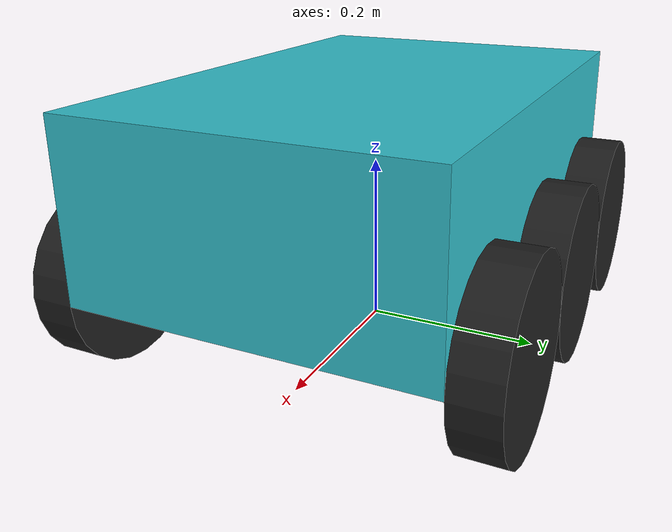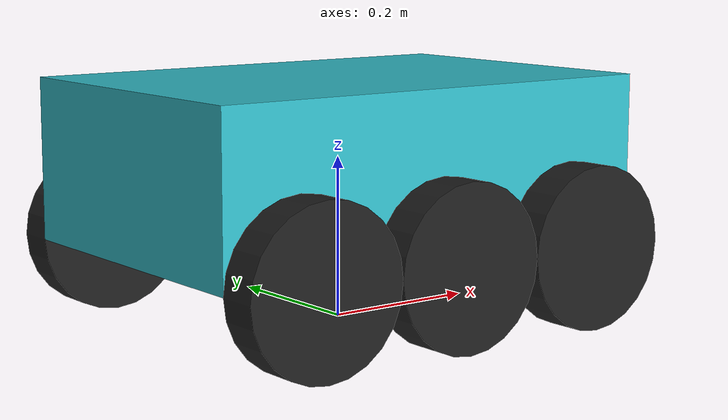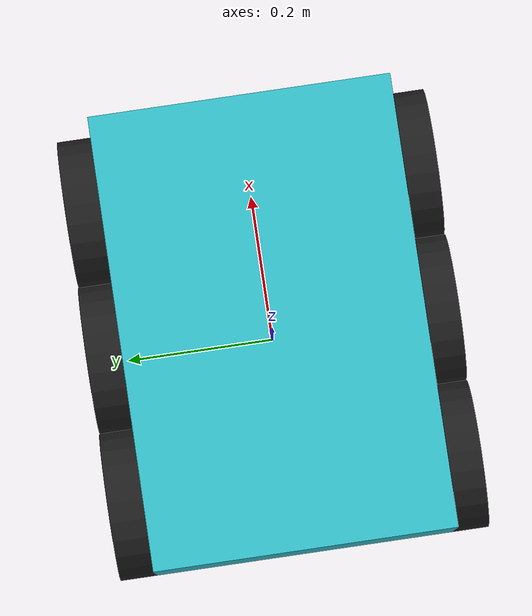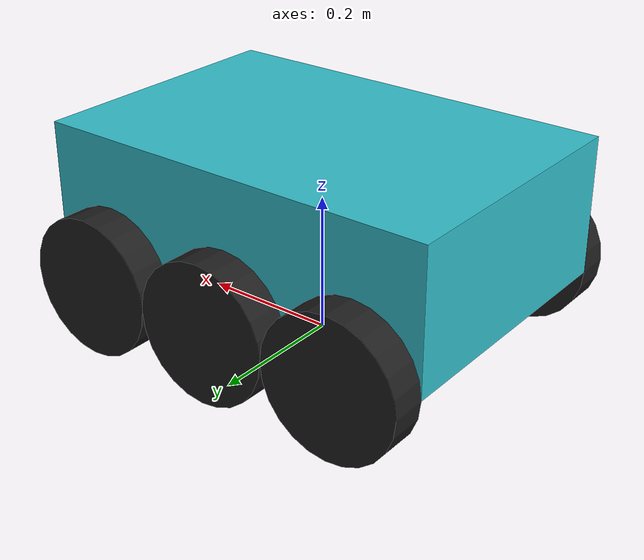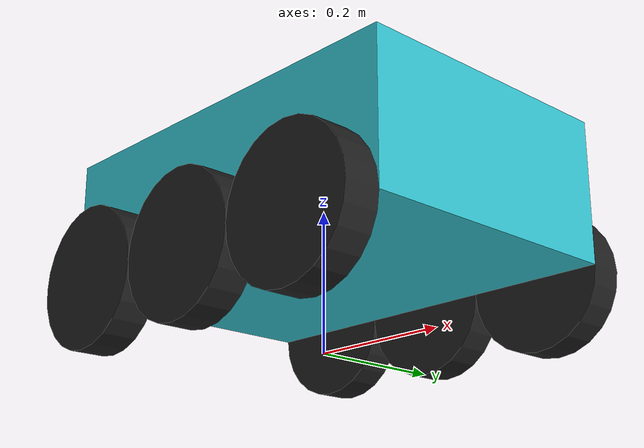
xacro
<?xml version = "1.0"?>
<robot name = "my_robot" xmlns:xacro="http://www.ros.org/wiki/xacro">

    <xacro:property name = "base_width" value = "0.6" />
    <xacro:property name = "base_length" value = "0.4" />
    <xacro:property name = "base_height" value = "0.2" />

    <xacro:property name = "wheel_radius" value = "0.1" />
    <xacro:property name = "wheel_length" value = "0.05" />

    <xacro:macro name = "wheel_link" params = "prefix">
        <link name = "${prefix}_wheel_link">
            <visual>
                <geometry>
                    <cylinder radius = "${wheel_radius}" length = "${wheel_length}" />
                </geometry>
                <origin xyz = "0 0 0" rpy = "${pi/2} 0 0" />
                <material name = "black" />
            </visual>

            <collision>
                <geometry>
                    <cylinder radius = "${wheel_radius}" length = "${wheel_length}" />
                </geometry>
                <origin xyz = "0 0 0" rpy = "${pi/2} 0 0" />
            </collision>

            <xacro:cylinder_inertia m = "1.0" r = "${2*wheel_radius}"
                                              h = "${2*wheel_length}"
                                              xyz = "0 0 0"
                                              rpy = "${pi/2} 0 0" />
        </link>
    </xacro:macro>

    <link name = "base_footprint" />

    <link name = "base_link">
        <visual>
            <geometry>
                <box size = "${base_width} ${base_length} ${base_height}" />
            </geometry>
            <origin xyz = "0 0 0" rpy = "0 0 0" />
            <material name = "cyan" />
        </visual>
        <collision>
            <geometry>
                <box size = "${base_width} ${base_length} ${base_height}" />
            </geometry>
            <origin xyz = "0 0 0" rpy = "0 0 0" />
        </collision>

        <xacro:box_inertia m = "5.0" l = "${2*base_length}"
                                     w = "${2*base_width}"
                                     h = "${2*base_height}"
                                     xyz = "0 0 0"
                                     rpy = "0 0 0" />
    </link>

    <xacro:wheel_link prefix = "right_front" />
    <xacro:wheel_link prefix = "left_front" />

    <xacro:wheel_link prefix = "right_back" />
    <xacro:wheel_link prefix = "left_back" />

    <xacro:wheel_link prefix = "right_mid" />
    <xacro:wheel_link prefix = "left_mid" />

    <joint name = "base_joint" type = "fixed">
        <parent link = "base_footprint" />
        <child link  = "base_link" />
        <origin xyz = "0 0 ${(base_height / 2) + wheel_radius}" rpy = "0 0 0" />
    </joint>

    <joint name = "base_right_front_wheel_joint" type = "continuous">
        <parent link = "base_link" />
        <child link  = "right_front_wheel_link" />
        <origin xyz = "${(-(base_width / 2)) + wheel_radius}
                       ${-((base_length / 2) + (wheel_length / 2))}
                       ${-wheel_radius}"
                       rpy = "0 0 0" />
        <axis xyz = "0 1 0" />
    </joint>

    <joint name = "base_left_front_wheel_joint" type = "continuous">
        <parent link = "base_link" />
        <child link  = "left_front_wheel_link" />
        <origin xyz = "${(-(base_width / 2)) + wheel_radius}
                       ${(base_length / 2) + (wheel_length / 2)}
                       ${-wheel_radius}"
                       rpy = "0 0 0" />
        <axis xyz = "0 1 0" />
    </joint>

    <joint name = "base_left_back_wheel_joint" type = "continuous">
        <parent link = "base_link" />
        <child link  = "left_back_wheel_link" />
        <origin xyz = "${(+(base_width / 2)) - wheel_radius}
                       ${(base_length / 2) + (wheel_length / 2)}
                       ${-wheel_radius}"
                       rpy = "0 0 0" />
        <axis xyz = "0 1 0" />
    </joint>

        <joint name = "base_right_back_wheel_joint" type = "continuous">
        <parent link = "base_link" />
        <child link  = "right_back_wheel_link" />
        <origin xyz = "${((base_width / 2)) - wheel_radius}
                       ${-((base_length / 2) + (wheel_length / 2))}
                       ${-wheel_radius}"
                       rpy = "0 0 0" />
        <axis xyz = "0 1 0" />
    </joint>

        <joint name = "base_right_mid_wheel_joint" type = "continuous">
        <parent link = "base_link" />
        <child link  = "right_mid_wheel_link" />
        <origin xyz = "0
                       ${-((base_length / 2) + (wheel_length / 2))}
                       ${-wheel_radius}"
                       rpy = "0 0 0" />
        <axis xyz = "0 1 0" />
    </joint>

    <joint name = "base_left_mid_wheel_joint" type = "continuous">
        <parent link = "base_link" />
        <child link  = "left_mid_wheel_link" />
        <origin xyz = "0
                       ${(base_length / 2) + (wheel_length / 2)}
                       ${-wheel_radius}"
                       rpy = "0 0 0" />
        <axis xyz = "0 1 0" />
    </joint>

</robot>
